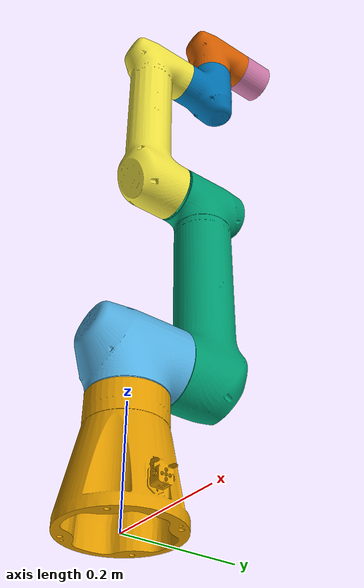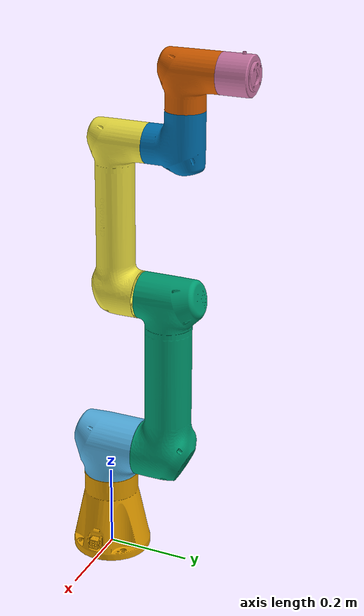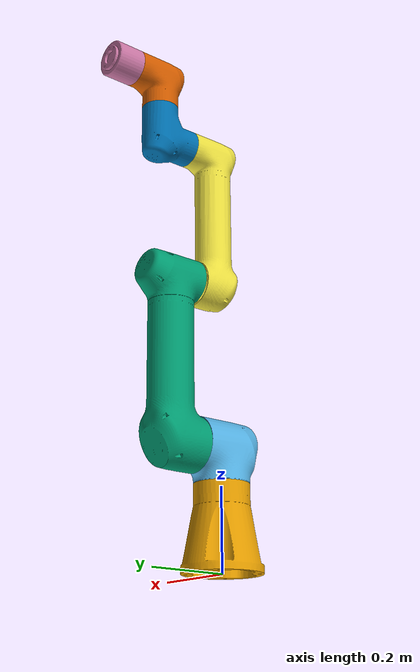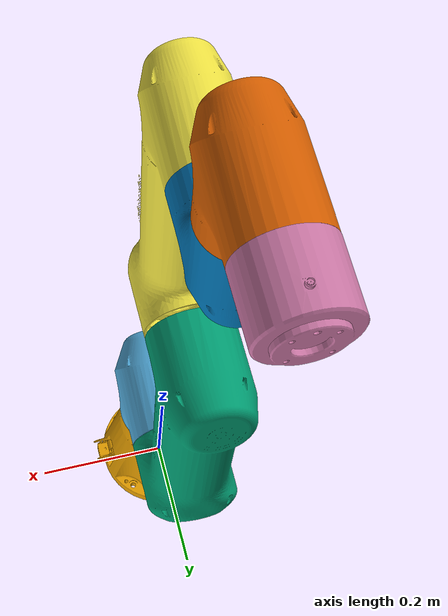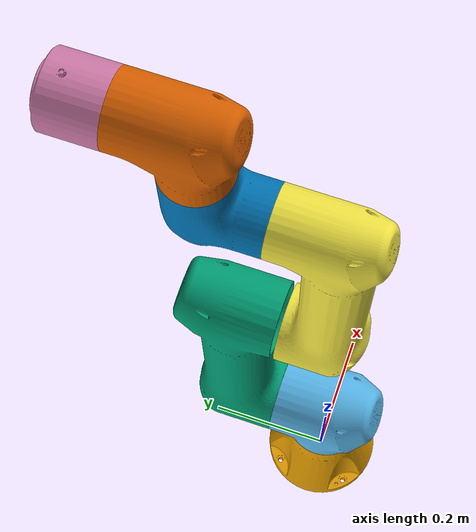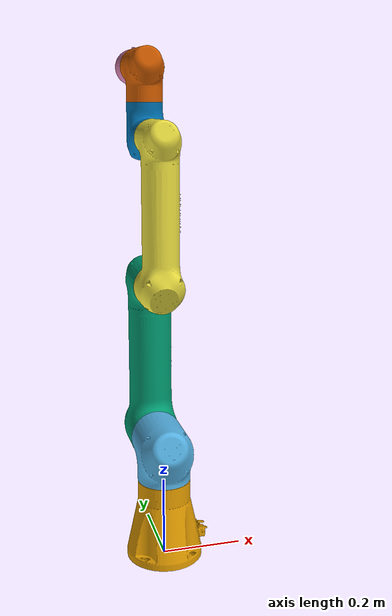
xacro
<?xml version="1.0"?>
<robot name="chin_arm" xmlns:xacro="http://ros.org/wiki/xacro">

  <xacro:property name="arm_id" value="chin"/>
  <!--is the robot being simulated in gazebo?-->
  <xacro:property name="gazebo" value="false"/>

  <xacro:property name="link_base_height" value="0.2038"/>
  <xacro:property name="link_base_radius" value="0.095"/>
  <xacro:property name="link_1_height" value="0.081"/>
  <xacro:property name="link_1_radius" value="0.066"/>
  <xacro:property name="link_2_height" value="0.082"/>
  <xacro:property name="link_2_radius" value="0.066"/>
  <xacro:property name="link_3_height" value="0.07"/>
  <xacro:property name="link_3_radius" value="0.066"/>
  <xacro:property name="link_4_height" value="0.398"/>
  <xacro:property name="link_4_radius" value="0.055"/>
  <xacro:property name="link_5_height" value="0.065"/>
  <xacro:property name="link_5_radius" value="0.055"/>
  <xacro:property name="link_6_height" value="0.063"/>
  <xacro:property name="link_6_radius" value="0.055"/>
  <xacro:property name="link_7_height" value="0.36"/>
  <xacro:property name="link_7_radius" value="0.045"/>
  <xacro:property name="link_8_height" value="0.083"/>
  <xacro:property name="link_8_radius" value="0.045"/>
  <xacro:property name="link_9_height" value="0.087"/>
  <xacro:property name="link_9_radius" value="0.045"/>
  <xacro:property name="link_10_height" value="0.083"/>
  <xacro:property name="link_10_radius" value="0.045"/>
  <xacro:property name="link_11_height" value="0.087"/>
  <xacro:property name="link_11_radius" value="0.045"/>
  <xacro:property name="link_12_height" value="0.083"/>
  <xacro:property name="link_12_radius" value="0.045"/>
  <xacro:property name="link_13_height" value="0.077"/>
  <xacro:property name="link_13_radius" value="0.045"/>

  <xacro:property name="mesh" value="yes"/>
  <xacro:property name="description_pkg" value="${arm_id}_description"/>

  <material name="white">
    <color rgba="1 1 1 1"/>
  </material>
  <material name="blue">
    <color rgba="0 0 0.8 1"/>
  </material>
  <material name="silver">
    <color rgba="0.51 0.54 0.59 1"/>
  </material>

  <xacro:macro name="link_with_sc"  params="name link_height link_radius pos_xyz:='0 0 0' pos_rpy:='0 0 0' visual_color:='white' prefix=${arm_id} rpy:='0 0 0' **self_collision_geometries gazebo:=false">
    <!--sub-link defining detailed meshes for collision with environment-->
    <link name="${prefix}_${name}">
      <visual>
	      <origin xyz="${pos_xyz}" rpy="${pos_rpy}"/>
        <geometry>
          <!--the expression of condition cannot contain the key 'true/false' and '0/1'-->
          <xacro:if value="${mesh == 'yes'}">
            <mesh filename="package://${description_pkg}/meshes/visual/${name}.dae"/>
          </xacro:if>
          <xacro:unless value="${mesh == 'yes'}">
            <cylinder length="${link_height}" radius="${link_radius}"/>
          </xacro:unless>
        </geometry>
        <xacro:unless value="${mesh == 'yes'}">
          <material name="${visual_color}"/>
        </xacro:unless>
      </visual>
      <collision>
	      <origin xyz="${pos_xyz}" rpy="${pos_rpy}"/>
        <geometry>
          <xacro:if value="${mesh == 'yes'}">
            <mesh filename="package://${description_pkg}/meshes/collision/${name}.stl"/>
          </xacro:if>
          <xacro:unless value="${mesh == 'yes'}">
            <cylinder length="${link_height}" radius="${link_radius}"/>
          </xacro:unless>
        </geometry>
      </collision>
      <xacro:if value="${gazebo}">
        <xacro:inertial_props name="${name}"/>
      </xacro:if>
    </link>
  </xacro:macro>

  <!--fixed link0-->
  <xacro:link_with_sc name="link_0" link_height="${link_base_height}" link_radius="${link_base_radius}" gazebo="${gazebo}">
    <self_collision_geometries/>
  </xacro:link_with_sc>

  <!--link1 to link0-->
  <xacro:link_with_sc name="link_1" link_height="${link_1_height}" link_radius="${link_1_radius}" pos_xyz="0 0 0" gazebo="${gazebo}">
    <self_collision_geometries/>
  </xacro:link_with_sc>
  <joint name="${arm_id}_joint_1" type="revolute">
    <safety_controller k_position="100.0" k_velocity="40.0" soft_lower_limit="${-pi}" soft_upper_limit="${pi}"/>
    <origin rpy="0 0 0" xyz="0 0 ${link_base_height}"/>
    <parent link="${arm_id}_link_0"/>
    <child link="${arm_id}_link_1"/>
    <axis xyz="0 0 1"/>
    <limit lower="${-pi}" upper="${pi}" effort="0" velocity="0"/>
    <dynamics D="1" K="7000" damping="0.003" friction="0.0" mu_coulomb="0" mu_viscous="16"/>
  </joint>

  <!--link2 to link1-->
  <xacro:link_with_sc name="link_2" link_height="${link_2_height}" link_radius="${link_2_radius}" pos_xyz="0 0 0" gazebo="${gazebo}">
    <self_collision_geometries/>
  </xacro:link_with_sc>
  <joint name="${arm_id}_joint_2" type="revolute">
    <safety_controller k_position="100.0" k_velocity="40.0" soft_lower_limit="${-pi}" soft_upper_limit="${pi}"/>
    <origin rpy="${-0.5*pi} 0 0" xyz="0 ${link_2_height} ${link_1_height}"/>
    <parent link="${arm_id}_link_1"/>
    <child link="${arm_id}_link_2"/>
    <axis xyz="0 0 1"/>
    <limit lower="${-pi}" upper="${pi}" effort="0" velocity="0"/>
    <dynamics D="1" K="7000" damping="0.003" friction="0.0" mu_coulomb="0" mu_viscous="16"/>
  </joint>

  <!--link3 to link2-->
  <xacro:link_with_sc name="link_3" link_height="${link_3_height}" link_radius="${link_3_radius}" pos_xyz="0 0 0" gazebo="${gazebo}">
    <self_collision_geometries/>
  </xacro:link_with_sc>
  <joint name="${arm_id}_joint_3" type="revolute">
    <safety_controller k_position="100.0" k_velocity="40.0" soft_lower_limit="${-160.0*pi/180.0}" soft_upper_limit="${160.0*pi/180.0}"/>
    <origin rpy="${pi} 0 0" xyz="0 ${-link_4_height} 0"/>
    <parent link="${arm_id}_link_2"/>
    <child link="${arm_id}_link_3"/>
    <axis xyz="0 0 1"/>
    <limit lower="${-160.0*pi/180.0}" upper="${160.0*pi/180.0}" effort="0" velocity="0"/>
    <dynamics D="1" K="7000" damping="0.003" friction="0.0" mu_coulomb="0" mu_viscous="16"/>
  </joint>

  <!--link4 to link3-->
  <xacro:link_with_sc name="link_4" link_height="${link_4_height}" link_radius="${link_4_radius}" pos_xyz="0 0 0" gazebo="${gazebo}">
    <self_collision_geometries/>
  </xacro:link_with_sc>
  <joint name="${arm_id}_joint_4" type="revolute">
    <safety_controller k_position="100.0" k_velocity="40.0" soft_lower_limit="${-pi}" soft_upper_limit="${pi}"/>
    <origin rpy="${pi} 0 0" xyz="0 ${link_7_height} ${-(link_8_height-link_6_height)}"/>
    <parent link="${arm_id}_link_3"/>
    <child link="${arm_id}_link_4"/>
    <axis xyz="0 0 1"/>
    <limit lower="${-pi}" upper="${pi}" effort="0" velocity="0"/>
    <dynamics D="1" K="7000" damping="0.003" friction="0.0" mu_coulomb="0" mu_viscous="16"/>
  </joint>

  <!--link5 to link4-->
  <xacro:link_with_sc name="link_5" link_height="${link_5_height}" link_radius="${link_5_radius}" pos_xyz="0 0 0" gazebo="${gazebo}">
    <self_collision_geometries/>
  </xacro:link_with_sc>
  <joint name="${arm_id}_joint_5" type="revolute">
    <safety_controller k_position="100.0" k_velocity="40.0" soft_lower_limit="${-pi}" soft_upper_limit="${pi}"/>
    <origin rpy="${0.5*pi} 0 0" xyz="0 ${-link_10_height} ${link_11_height}"/>
    <parent link="${arm_id}_link_4"/>
    <child link="${arm_id}_link_5"/>
    <axis xyz="0 0 1"/>
    <limit lower="${-pi}" upper="${pi}" effort="0" velocity="0"/>
    <dynamics D="1" K="7000" damping="0.003" friction="0.0" mu_coulomb="0" mu_viscous="16"/>
  </joint>

  <!--link6 to link5-->
  <xacro:link_with_sc name="link_6" link_height="${link_6_height}" link_radius="${link_6_radius}" pos_xyz="0 0 0" gazebo="${gazebo}">
    <self_collision_geometries/>
  </xacro:link_with_sc>
  <joint name="${arm_id}_joint_6" type="revolute">
    <safety_controller k_position="100.0" k_velocity="40.0" soft_lower_limit="${-pi}" soft_upper_limit="${pi}"/>
    <origin rpy="${-0.5*pi} 0 0" xyz="0 ${link_12_height} ${link_11_height}"/>
    <parent link="${arm_id}_link_5"/>
    <child link="${arm_id}_link_6"/>
    <axis xyz="0 0 1"/>
    <limit lower="${-pi}" upper="${pi}" effort="0" velocity="0"/>
    <dynamics D="1" K="7000" damping="0.003" friction="0.0" mu_coulomb="0" mu_viscous="16"/>
  </joint>

  <!--link7 to link6-->
  <link name="${arm_id}_link_7"/>
  <joint name="${arm_id}_joint_7" type="fixed">
    <origin rpy="0 0 ${-pi}" xyz="0 0 ${link_13_height}"/>
    <parent link="${arm_id}_link_6"/>
    <child link="${arm_id}_link_7"/>
  </joint>

</robot>
